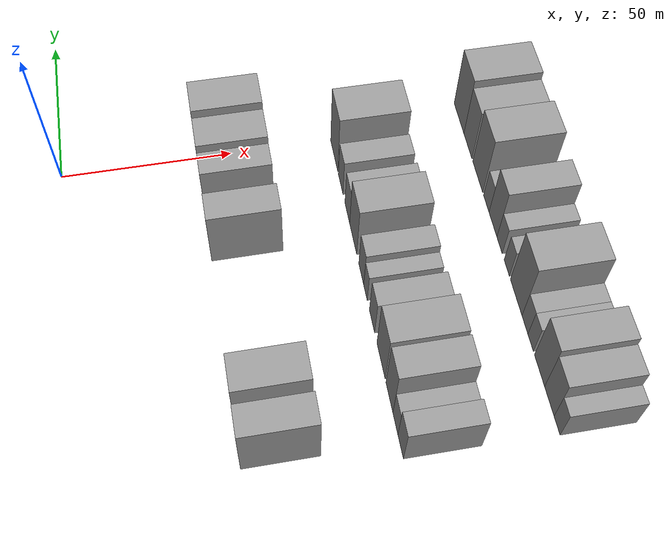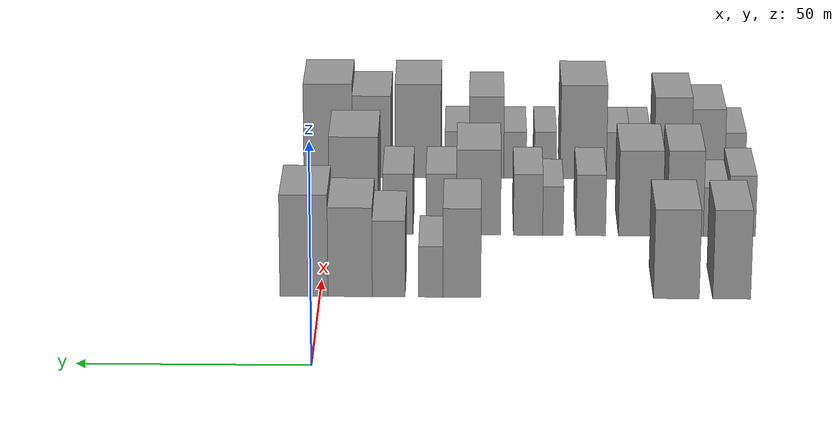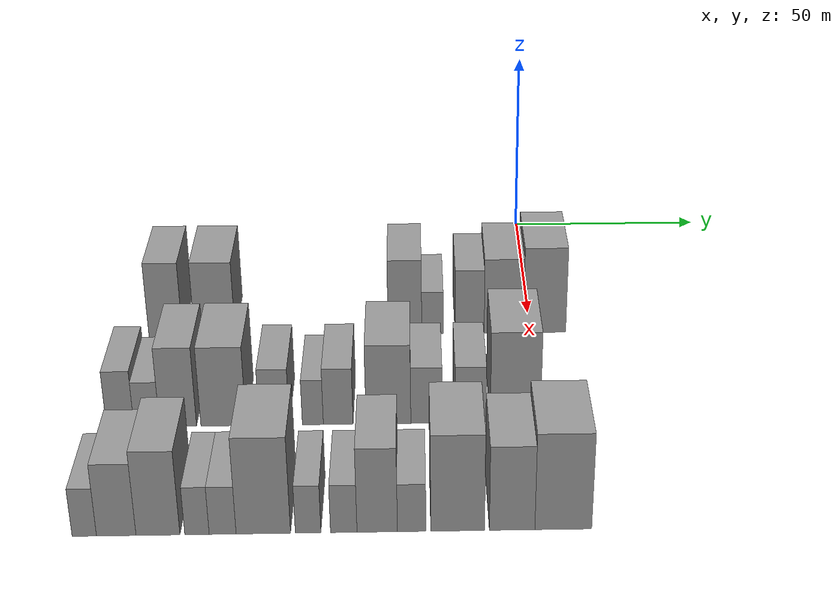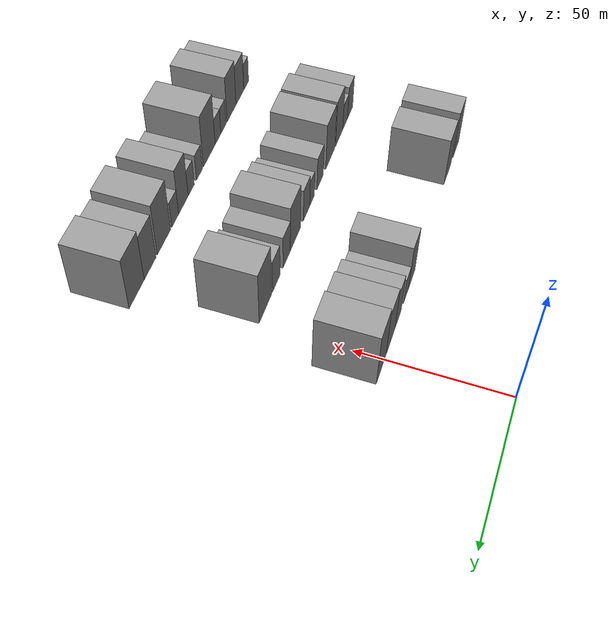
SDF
<sdf version="1.6">
 <world name="default">
  <model name="building_28">
   <static>1</static>
   <pose>50.0000 -91.6660 0 0.000000 0.000000 0.000000</pose>
   <link name="link">
    <pose>0 0 10.50 0 0 0</pose>
    <collision name="collision"><geometry><box><size>20.0000 8.4268 21.0000</size></box></geometry></collision>
    <visual name="visual">
     <cast_shadows>0</cast_shadows>
     <geometry><box><size>20.0000 8.4268 21.0000</size></box></geometry>
     <material>
      <script>
       <uri>model://grey_wall/materials/scripts</uri>
       <uri>model://grey_wall/materials/textures</uri>
       <name>vrc/grey_wall</name>
      </script>
     </material>
    </visual>
   </link>
  </model>
  <model name="building_29">
   <static>1</static>
   <pose>50.0000 -79.3613 0 0.000000 0.000000 0.000000</pose>
   <link name="link">
    <pose>0 0 10.50 0 0 0</pose>
    <collision name="collision"><geometry><box><size>20.0000 10.1827 21.0000</size></box></geometry></collision>
    <visual name="visual">
     <cast_shadows>0</cast_shadows>
     <geometry><box><size>20.0000 10.1827 21.0000</size></box></geometry>
     <material>
      <script>
       <uri>model://grey_wall/materials/scripts</uri>
       <uri>model://grey_wall/materials/textures</uri>
       <name>vrc/grey_wall</name>
      </script>
     </material>
    </visual>
   </link>
  </model>
  <model name="building_30">
   <static>1</static>
   <pose>50.0000 -31.5972 0 0.000000 0.000000 0.000000</pose>
   <link name="link">
    <pose>0 0 10.50 0 0 0</pose>
    <collision name="collision"><geometry><box><size>20.0000 8.4485 21.0000</size></box></geometry></collision>
    <visual name="visual">
     <cast_shadows>0</cast_shadows>
     <geometry><box><size>20.0000 8.4485 21.0000</size></box></geometry>
     <material>
      <script>
       <uri>model://grey_wall/materials/scripts</uri>
       <uri>model://grey_wall/materials/textures</uri>
       <name>vrc/grey_wall</name>
      </script>
     </material>
    </visual>
   </link>
  </model>
  <model name="building_31">
   <static>1</static>
   <pose>50.0000 -24.6672 0 0.000000 0.000000 0.000000</pose>
   <link name="link">
    <pose>0 0 6.00 0 0 0</pose>
    <collision name="collision"><geometry><box><size>20.0000 5.4116 12.0000</size></box></geometry></collision>
    <visual name="visual">
     <cast_shadows>0</cast_shadows>
     <geometry><box><size>20.0000 5.4116 12.0000</size></box></geometry>
     <material>
      <script>
       <uri>model://grey_wall/materials/scripts</uri>
       <uri>model://grey_wall/materials/textures</uri>
       <name>vrc/grey_wall</name>
      </script>
     </material>
    </visual>
   </link>
  </model>
  <model name="building_32">
   <static>1</static>
   <pose>50.0000 -15.2973 0 0.000000 0.000000 0.000000</pose>
   <link name="link">
    <pose>0 0 9.00 0 0 0</pose>
    <collision name="collision"><geometry><box><size>20.0000 7.3282 18.0000</size></box></geometry></collision>
    <visual name="visual">
     <cast_shadows>0</cast_shadows>
     <geometry><box><size>20.0000 7.3282 18.0000</size></box></geometry>
     <material>
      <script>
       <uri>model://grey_wall/materials/scripts</uri>
       <uri>model://grey_wall/materials/textures</uri>
       <name>vrc/grey_wall</name>
      </script>
     </material>
    </visual>
   </link>
  </model>
  <model name="building_33">
   <static>1</static>
   <pose>50.0000 -6.6849 0 0.000000 0.000000 0.000000</pose>
   <link name="link">
    <pose>0 0 10.50 0 0 0</pose>
    <collision name="collision"><geometry><box><size>20.0000 9.8966 21.0000</size></box></geometry></collision>
    <visual name="visual">
     <cast_shadows>0</cast_shadows>
     <geometry><box><size>20.0000 9.8966 21.0000</size></box></geometry>
     <material>
      <script>
       <uri>model://grey_wall/materials/scripts</uri>
       <uri>model://grey_wall/materials/textures</uri>
       <name>vrc/grey_wall</name>
      </script>
     </material>
    </visual>
   </link>
  </model>
  <model name="building_34">
   <static>1</static>
   <pose>50.0000 3.6107 0 0.000000 0.000000 0.000000</pose>
   <link name="link">
    <pose>0 0 12.00 0 0 0</pose>
    <collision name="collision"><geometry><box><size>20.0000 10.6946 24.0000</size></box></geometry></collision>
    <visual name="visual">
     <cast_shadows>0</cast_shadows>
     <geometry><box><size>20.0000 10.6946 24.0000</size></box></geometry>
     <material>
      <script>
       <uri>model://grey_wall/materials/scripts</uri>
       <uri>model://grey_wall/materials/textures</uri>
       <name>vrc/grey_wall</name>
      </script>
     </material>
    </visual>
   </link>
  </model>
  <model name="building_109">
   <static>1</static>
   <pose>90.0000 -96.9042 0 0.000000 0.000000 0.000000</pose>
   <link name="link">
    <pose>0 0 7.50 0 0 0</pose>
    <collision name="collision"><geometry><box><size>20.0000 6.2893 15.0000</size></box></geometry></collision>
    <visual name="visual">
     <cast_shadows>0</cast_shadows>
     <geometry><box><size>20.0000 6.2893 15.0000</size></box></geometry>
     <material>
      <script>
       <uri>model://grey_wall/materials/scripts</uri>
       <uri>model://grey_wall/materials/textures</uri>
       <name>vrc/grey_wall</name>
      </script>
     </material>
    </visual>
   </link>
  </model>
  <model name="building_110">
   <static>1</static>
   <pose>90.0000 -90.8162 0 0.000000 0.000000 0.000000</pose>
   <link name="link">
    <pose>0 0 6.00 0 0 0</pose>
    <collision name="collision"><geometry><box><size>20.0000 5.8867 12.0000</size></box></geometry></collision>
    <visual name="visual">
     <cast_shadows>0</cast_shadows>
     <geometry><box><size>20.0000 5.8867 12.0000</size></box></geometry>
     <material>
      <script>
       <uri>model://grey_wall/materials/scripts</uri>
       <uri>model://grey_wall/materials/textures</uri>
       <name>vrc/grey_wall</name>
      </script>
     </material>
    </visual>
   </link>
  </model>
  <model name="building_111">
   <static>1</static>
   <pose>90.0000 -83.6538 0 0.000000 0.000000 0.000000</pose>
   <link name="link">
    <pose>0 0 10.50 0 0 0</pose>
    <collision name="collision"><geometry><box><size>20.0000 8.4380 21.0000</size></box></geometry></collision>
    <visual name="visual">
     <cast_shadows>0</cast_shadows>
     <geometry><box><size>20.0000 8.4380 21.0000</size></box></geometry>
     <material>
      <script>
       <uri>model://grey_wall/materials/scripts</uri>
       <uri>model://grey_wall/materials/textures</uri>
       <name>vrc/grey_wall</name>
      </script>
     </material>
    </visual>
   </link>
  </model>
  <model name="building_112">
   <static>1</static>
   <pose>90.0000 -73.2528 0 0.000000 0.000000 0.000000</pose>
   <link name="link">
    <pose>0 0 10.50 0 0 0</pose>
    <collision name="collision"><geometry><box><size>20.0000 10.3641 21.0000</size></box></geometry></collision>
    <visual name="visual">
     <cast_shadows>0</cast_shadows>
     <geometry><box><size>20.0000 10.3641 21.0000</size></box></geometry>
     <material>
      <script>
       <uri>model://grey_wall/materials/scripts</uri>
       <uri>model://grey_wall/materials/textures</uri>
       <name>vrc/grey_wall</name>
      </script>
     </material>
    </visual>
   </link>
  </model>
  <model name="building_113">
   <static>1</static>
   <pose>90.0000 -61.6180 0 0.000000 0.000000 0.000000</pose>
   <link name="link">
    <pose>0 0 7.50 0 0 0</pose>
    <collision name="collision"><geometry><box><size>20.0000 6.9055 15.0000</size></box></geometry></collision>
    <visual name="visual">
     <cast_shadows>0</cast_shadows>
     <geometry><box><size>20.0000 6.9055 15.0000</size></box></geometry>
     <material>
      <script>
       <uri>model://grey_wall/materials/scripts</uri>
       <uri>model://grey_wall/materials/textures</uri>
       <name>vrc/grey_wall</name>
      </script>
     </material>
    </visual>
   </link>
  </model>
  <model name="building_114">
   <static>1</static>
   <pose>90.0000 -52.7577 0 0.000000 0.000000 0.000000</pose>
   <link name="link">
    <pose>0 0 6.00 0 0 0</pose>
    <collision name="collision"><geometry><box><size>20.0000 4.8150 12.0000</size></box></geometry></collision>
    <visual name="visual">
     <cast_shadows>0</cast_shadows>
     <geometry><box><size>20.0000 4.8150 12.0000</size></box></geometry>
     <material>
      <script>
       <uri>model://grey_wall/materials/scripts</uri>
       <uri>model://grey_wall/materials/textures</uri>
       <name>vrc/grey_wall</name>
      </script>
     </material>
    </visual>
   </link>
  </model>
  <model name="building_115">
   <static>1</static>
   <pose>90.0000 -46.9347 0 0.000000 0.000000 0.000000</pose>
   <link name="link">
    <pose>0 0 7.50 0 0 0</pose>
    <collision name="collision"><geometry><box><size>20.0000 6.8310 15.0000</size></box></geometry></collision>
    <visual name="visual">
     <cast_shadows>0</cast_shadows>
     <geometry><box><size>20.0000 6.8310 15.0000</size></box></geometry>
     <material>
      <script>
       <uri>model://grey_wall/materials/scripts</uri>
       <uri>model://grey_wall/materials/textures</uri>
       <name>vrc/grey_wall</name>
      </script>
     </material>
    </visual>
   </link>
  </model>
  <model name="building_116">
   <static>1</static>
   <pose>90.0000 -35.3704 0 0.000000 0.000000 0.000000</pose>
   <link name="link">
    <pose>0 0 10.50 0 0 0</pose>
    <collision name="collision"><geometry><box><size>20.0000 10.2976 21.0000</size></box></geometry></collision>
    <visual name="visual">
     <cast_shadows>0</cast_shadows>
     <geometry><box><size>20.0000 10.2976 21.0000</size></box></geometry>
     <material>
      <script>
       <uri>model://grey_wall/materials/scripts</uri>
       <uri>model://grey_wall/materials/textures</uri>
       <name>vrc/grey_wall</name>
      </script>
     </material>
    </visual>
   </link>
  </model>
  <model name="building_117">
   <static>1</static>
   <pose>90.0000 -26.6261 0 0.000000 0.000000 0.000000</pose>
   <link name="link">
    <pose>0 0 7.50 0 0 0</pose>
    <collision name="collision"><geometry><box><size>20.0000 7.1910 15.0000</size></box></geometry></collision>
    <visual name="visual">
     <cast_shadows>0</cast_shadows>
     <geometry><box><size>20.0000 7.1910 15.0000</size></box></geometry>
     <material>
      <script>
       <uri>model://grey_wall/materials/scripts</uri>
       <uri>model://grey_wall/materials/textures</uri>
       <name>vrc/grey_wall</name>
      </script>
     </material>
    </visual>
   </link>
  </model>
  <model name="building_118">
   <static>1</static>
   <pose>90.0000 -16.4664 0 0.000000 0.000000 0.000000</pose>
   <link name="link">
    <pose>0 0 7.50 0 0 0</pose>
    <collision name="collision"><geometry><box><size>20.0000 7.1284 15.0000</size></box></geometry></collision>
    <visual name="visual">
     <cast_shadows>0</cast_shadows>
     <geometry><box><size>20.0000 7.1284 15.0000</size></box></geometry>
     <material>
      <script>
       <uri>model://grey_wall/materials/scripts</uri>
       <uri>model://grey_wall/materials/textures</uri>
       <name>vrc/grey_wall</name>
      </script>
     </material>
    </visual>
   </link>
  </model>
  <model name="building_119">
   <static>1</static>
   <pose>90.0000 -6.1324 0 0.000000 0.000000 0.000000</pose>
   <link name="link">
    <pose>0 0 12.00 0 0 0</pose>
    <collision name="collision"><geometry><box><size>20.0000 11.5397 24.0000</size></box></geometry></collision>
    <visual name="visual">
     <cast_shadows>0</cast_shadows>
     <geometry><box><size>20.0000 11.5397 24.0000</size></box></geometry>
     <material>
      <script>
       <uri>model://grey_wall/materials/scripts</uri>
       <uri>model://grey_wall/materials/textures</uri>
       <name>vrc/grey_wall</name>
      </script>
     </material>
    </visual>
   </link>
  </model>
  <model name="building_194">
   <static>1</static>
   <pose>130.0000 -98.1546 0 0.000000 0.000000 0.000000</pose>
   <link name="link">
    <pose>0 0 6.00 0 0 0</pose>
    <collision name="collision"><geometry><box><size>20.0000 5.0488 12.0000</size></box></geometry></collision>
    <visual name="visual">
     <cast_shadows>0</cast_shadows>
     <geometry><box><size>20.0000 5.0488 12.0000</size></box></geometry>
     <material>
      <script>
       <uri>model://grey_wall/materials/scripts</uri>
       <uri>model://grey_wall/materials/textures</uri>
       <name>vrc/grey_wall</name>
      </script>
     </material>
    </visual>
   </link>
  </model>
  <model name="building_195">
   <static>1</static>
   <pose>130.0000 -91.5407 0 0.000000 0.000000 0.000000</pose>
   <link name="link">
    <pose>0 0 9.00 0 0 0</pose>
    <collision name="collision"><geometry><box><size>20.0000 8.1789 18.0000</size></box></geometry></collision>
    <visual name="visual">
     <cast_shadows>0</cast_shadows>
     <geometry><box><size>20.0000 8.1789 18.0000</size></box></geometry>
     <material>
      <script>
       <uri>model://grey_wall/materials/scripts</uri>
       <uri>model://grey_wall/materials/textures</uri>
       <name>vrc/grey_wall</name>
      </script>
     </material>
    </visual>
   </link>
  </model>
  <model name="building_196">
   <static>1</static>
   <pose>130.0000 -82.8974 0 0.000000 0.000000 0.000000</pose>
   <link name="link">
    <pose>0 0 10.50 0 0 0</pose>
    <collision name="collision"><geometry><box><size>20.0000 9.1078 21.0000</size></box></geometry></collision>
    <visual name="visual">
     <cast_shadows>0</cast_shadows>
     <geometry><box><size>20.0000 9.1078 21.0000</size></box></geometry>
     <material>
      <script>
       <uri>model://grey_wall/materials/scripts</uri>
       <uri>model://grey_wall/materials/textures</uri>
       <name>vrc/grey_wall</name>
      </script>
     </material>
    </visual>
   </link>
  </model>
  <model name="building_197">
   <static>1</static>
   <pose>130.0000 -74.8144 0 0.000000 0.000000 0.000000</pose>
   <link name="link">
    <pose>0 0 6.00 0 0 0</pose>
    <collision name="collision"><geometry><box><size>20.0000 5.0581 12.0000</size></box></geometry></collision>
    <visual name="visual">
     <cast_shadows>0</cast_shadows>
     <geometry><box><size>20.0000 5.0581 12.0000</size></box></geometry>
     <material>
      <script>
       <uri>model://grey_wall/materials/scripts</uri>
       <uri>model://grey_wall/materials/textures</uri>
       <name>vrc/grey_wall</name>
      </script>
     </material>
    </visual>
   </link>
  </model>
  <model name="building_198">
   <static>1</static>
   <pose>130.0000 -69.4889 0 0.000000 0.000000 0.000000</pose>
   <link name="link">
    <pose>0 0 6.00 0 0 0</pose>
    <collision name="collision"><geometry><box><size>20.0000 5.5929 12.0000</size></box></geometry></collision>
    <visual name="visual">
     <cast_shadows>0</cast_shadows>
     <geometry><box><size>20.0000 5.5929 12.0000</size></box></geometry>
     <material>
      <script>
       <uri>model://grey_wall/materials/scripts</uri>
       <uri>model://grey_wall/materials/textures</uri>
       <name>vrc/grey_wall</name>
      </script>
     </material>
    </visual>
   </link>
  </model>
  <model name="building_199">
   <static>1</static>
   <pose>130.0000 -61.0401 0 0.000000 0.000000 0.000000</pose>
   <link name="link">
    <pose>0 0 12.00 0 0 0</pose>
    <collision name="collision"><geometry><box><size>20.0000 11.3046 24.0000</size></box></geometry></collision>
    <visual name="visual">
     <cast_shadows>0</cast_shadows>
     <geometry><box><size>20.0000 11.3046 24.0000</size></box></geometry>
     <material>
      <script>
       <uri>model://grey_wall/materials/scripts</uri>
       <uri>model://grey_wall/materials/textures</uri>
       <name>vrc/grey_wall</name>
      </script>
     </material>
    </visual>
   </link>
  </model>
  <model name="building_200">
   <static>1</static>
   <pose>130.0000 -51.7268 0 0.000000 0.000000 0.000000</pose>
   <link name="link">
    <pose>0 0 6.00 0 0 0</pose>
    <collision name="collision"><geometry><box><size>20.0000 5.3221 12.0000</size></box></geometry></collision>
    <visual name="visual">
     <cast_shadows>0</cast_shadows>
     <geometry><box><size>20.0000 5.3221 12.0000</size></box></geometry>
     <material>
      <script>
       <uri>model://grey_wall/materials/scripts</uri>
       <uri>model://grey_wall/materials/textures</uri>
       <name>vrc/grey_wall</name>
      </script>
     </material>
    </visual>
   </link>
  </model>
  <model name="building_201">
   <static>1</static>
   <pose>130.0000 -44.3089 0 0.000000 0.000000 0.000000</pose>
   <link name="link">
    <pose>0 0 6.00 0 0 0</pose>
    <collision name="collision"><geometry><box><size>20.0000 5.5136 12.0000</size></box></geometry></collision>
    <visual name="visual">
     <cast_shadows>0</cast_shadows>
     <geometry><box><size>20.0000 5.5136 12.0000</size></box></geometry>
     <material>
      <script>
       <uri>model://grey_wall/materials/scripts</uri>
       <uri>model://grey_wall/materials/textures</uri>
       <name>vrc/grey_wall</name>
      </script>
     </material>
    </visual>
   </link>
  </model>
  <model name="building_202">
   <static>1</static>
   <pose>130.0000 -37.3354 0 0.000000 0.000000 0.000000</pose>
   <link name="link">
    <pose>0 0 10.50 0 0 0</pose>
    <collision name="collision"><geometry><box><size>20.0000 8.4333 21.0000</size></box></geometry></collision>
    <visual name="visual">
     <cast_shadows>0</cast_shadows>
     <geometry><box><size>20.0000 8.4333 21.0000</size></box></geometry>
     <material>
      <script>
       <uri>model://grey_wall/materials/scripts</uri>
       <uri>model://grey_wall/materials/textures</uri>
       <name>vrc/grey_wall</name>
      </script>
     </material>
    </visual>
   </link>
  </model>
  <model name="building_203">
   <static>1</static>
   <pose>130.0000 -30.1452 0 0.000000 0.000000 0.000000</pose>
   <link name="link">
    <pose>0 0 6.00 0 0 0</pose>
    <collision name="collision"><geometry><box><size>20.0000 5.9471 12.0000</size></box></geometry></collision>
    <visual name="visual">
     <cast_shadows>0</cast_shadows>
     <geometry><box><size>20.0000 5.9471 12.0000</size></box></geometry>
     <material>
      <script>
       <uri>model://grey_wall/materials/scripts</uri>
       <uri>model://grey_wall/materials/textures</uri>
       <name>vrc/grey_wall</name>
      </script>
     </material>
    </visual>
   </link>
  </model>
  <model name="building_204">
   <static>1</static>
   <pose>130.0000 -20.5475 0 0.000000 0.000000 0.000000</pose>
   <link name="link">
    <pose>0 0 12.00 0 0 0</pose>
    <collision name="collision"><geometry><box><size>20.0000 11.2483 24.0000</size></box></geometry></collision>
    <visual name="visual">
     <cast_shadows>0</cast_shadows>
     <geometry><box><size>20.0000 11.2483 24.0000</size></box></geometry>
     <material>
      <script>
       <uri>model://grey_wall/materials/scripts</uri>
       <uri>model://grey_wall/materials/textures</uri>
       <name>vrc/grey_wall</name>
      </script>
     </material>
    </visual>
   </link>
  </model>
  <model name="building_205">
   <static>1</static>
   <pose>130.0000 -9.1779 0 0.000000 0.000000 0.000000</pose>
   <link name="link">
    <pose>0 0 10.50 0 0 0</pose>
    <collision name="collision"><geometry><box><size>20.0000 9.4910 21.0000</size></box></geometry></collision>
    <visual name="visual">
     <cast_shadows>0</cast_shadows>
     <geometry><box><size>20.0000 9.4910 21.0000</size></box></geometry>
     <material>
      <script>
       <uri>model://grey_wall/materials/scripts</uri>
       <uri>model://grey_wall/materials/textures</uri>
       <name>vrc/grey_wall</name>
      </script>
     </material>
    </visual>
   </link>
  </model>
  <model name="building_206">
   <static>1</static>
   <pose>130.0000 1.5165 0 0.000000 0.000000 0.000000</pose>
   <link name="link">
    <pose>0 0 12.00 0 0 0</pose>
    <collision name="collision"><geometry><box><size>20.0000 11.8978 24.0000</size></box></geometry></collision>
    <visual name="visual">
     <cast_shadows>0</cast_shadows>
     <geometry><box><size>20.0000 11.8978 24.0000</size></box></geometry>
     <material>
      <script>
       <uri>model://grey_wall/materials/scripts</uri>
       <uri>model://grey_wall/materials/textures</uri>
       <name>vrc/grey_wall</name>
      </script>
     </material>
    </visual>
   </link>
  </model>
 </world>
</sdf>
